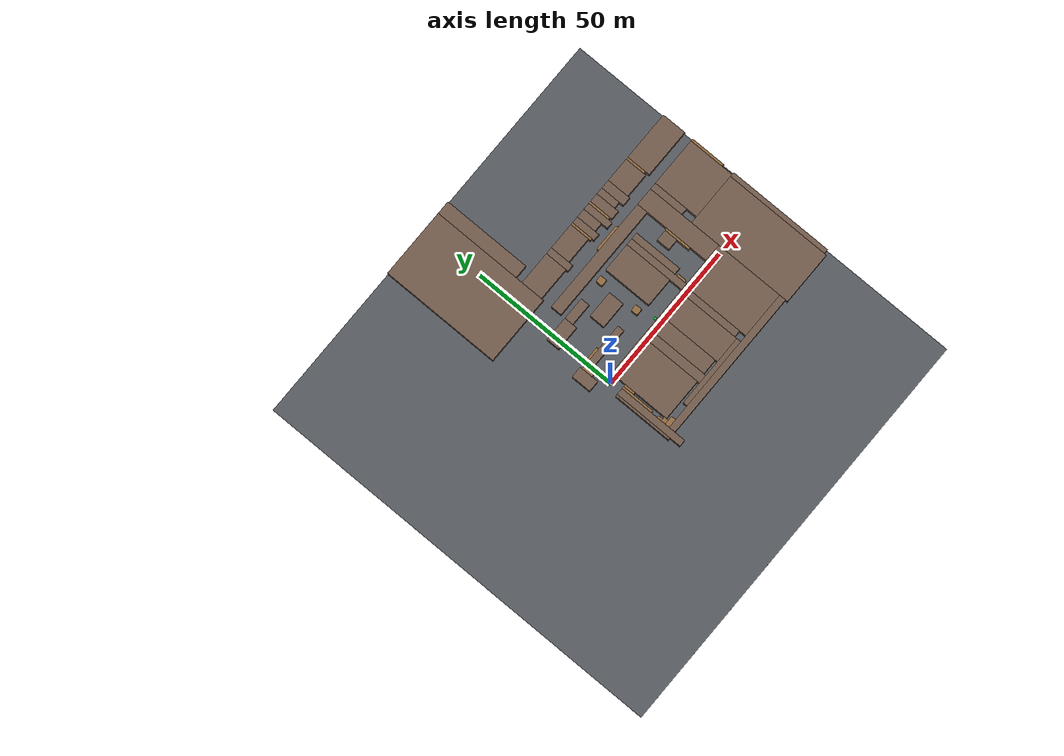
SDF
<sdf version="1.9">
 <world name="mosim_ue_factoryenvironmentcollect">
  <model name="ue_truth_ground">
   <static>true</static>
   <pose>0.75 0.75 -0.025 0 0 0</pose>
   <link name="link">
    <collision name="collision"><geometry><box><size>141 141 0.05</size></box></geometry></collision>
    <visual name="visual">
     <geometry><box><size>141 141 0.05</size></box></geometry>
     <material><ambient>0.34 0.36 0.38 1</ambient><diffuse>0.34 0.36 0.38 1</diffuse></material>
    </visual>
   </link>
  </model>
  <model name="ue_occ_0002">
   <static>true</static>
   <pose>-0.375 -15.75 1.5 0 0 0</pose>
   <link name="link">
    <collision name="collision"><geometry><box><size>2.25 24 3</size></box></geometry></collision>
    <visual name="visual">
     <geometry><box><size>2.25 24 3</size></box></geometry>
     <material><ambient>0.45 0.36 0.3 1</ambient><diffuse>0.45 0.36 0.3 1</diffuse></material>
    </visual>
   </link>
  </model>
  <model name="ue_occ_0007">
   <static>true</static>
   <pose>60.75 -6.375 1.5 0 0 0</pose>
   <link name="link">
    <collision name="collision"><geometry><box><size>18 36.75 3</size></box></geometry></collision>
    <visual name="visual">
     <geometry><box><size>18 36.75 3</size></box></geometry>
     <material><ambient>0.45 0.36 0.3 1</ambient><diffuse>0.45 0.36 0.3 1</diffuse></material>
    </visual>
   </link>
  </model>
  <model name="ue_occ_0008">
   <static>true</static>
   <pose>-1.875 -13.875 1.5 0 0 0</pose>
   <link name="link">
    <collision name="collision"><geometry><box><size>0.75 20.25 3</size></box></geometry></collision>
    <visual name="visual">
     <geometry><box><size>0.75 20.25 3</size></box></geometry>
     <material><ambient>0.45 0.36 0.3 1</ambient><diffuse>0.45 0.36 0.3 1</diffuse></material>
    </visual>
   </link>
  </model>
  <model name="ue_occ_0009">
   <static>true</static>
   <pose>26.25 -22.875 1.5 0 0 0</pose>
   <link name="link">
    <collision name="collision"><geometry><box><size>51 2.25 3</size></box></geometry></collision>
    <visual name="visual">
     <geometry><box><size>51 2.25 3</size></box></geometry>
     <material><ambient>0.45 0.36 0.3 1</ambient><diffuse>0.45 0.36 0.3 1</diffuse></material>
    </visual>
   </link>
  </model>
  <model name="ue_occ_0010">
   <static>true</static>
   <pose>70.5 -6 1.5 0 0 0</pose>
   <link name="link">
    <collision name="collision"><geometry><box><size>1.5 36 3</size></box></geometry></collision>
    <visual name="visual">
     <geometry><box><size>1.5 36 3</size></box></geometry>
     <material><ambient>0.45 0.36 0.3 1</ambient><diffuse>0.45 0.36 0.3 1</diffuse></material>
    </visual>
   </link>
  </model>
  <model name="ue_occ_0011">
   <static>true</static>
   <pose>2.25 -21 1.5 0 0 0</pose>
   <link name="link">
    <collision name="collision"><geometry><box><size>3 1.5 3</size></box></geometry></collision>
    <visual name="visual">
     <geometry><box><size>3 1.5 3</size></box></geometry>
     <material><ambient>0.58 0.42 0.25 1</ambient><diffuse>0.58 0.42 0.25 1</diffuse></material>
    </visual>
   </link>
  </model>
  <model name="ue_occ_0012">
   <static>true</static>
   <pose>21.375 -21 1.5 0 0 0</pose>
   <link name="link">
    <collision name="collision"><geometry><box><size>24.75 1.5 3</size></box></geometry></collision>
    <visual name="visual">
     <geometry><box><size>24.75 1.5 3</size></box></geometry>
     <material><ambient>0.45 0.36 0.3 1</ambient><diffuse>0.45 0.36 0.3 1</diffuse></material>
    </visual>
   </link>
  </model>
  <model name="ue_occ_0013">
   <static>true</static>
   <pose>43.875 -10.125 1.5 0 0 0</pose>
   <link name="link">
    <collision name="collision"><geometry><box><size>15.75 23.25 3</size></box></geometry></collision>
    <visual name="visual">
     <geometry><box><size>15.75 23.25 3</size></box></geometry>
     <material><ambient>0.45 0.36 0.3 1</ambient><diffuse>0.45 0.36 0.3 1</diffuse></material>
    </visual>
   </link>
  </model>
  <model name="ue_occ_0016">
   <static>true</static>
   <pose>1.5 -19.5 1.5 0 0 0</pose>
   <link name="link">
    <collision name="collision"><geometry><box><size>1.5 1.5 3</size></box></geometry></collision>
    <visual name="visual">
     <geometry><box><size>1.5 1.5 3</size></box></geometry>
     <material><ambient>0.58 0.42 0.25 1</ambient><diffuse>0.58 0.42 0.25 1</diffuse></material>
    </visual>
   </link>
  </model>
  <model name="ue_occ_0017">
   <static>true</static>
   <pose>18 -9.375 1.5 0 0 0</pose>
   <link name="link">
    <collision name="collision"><geometry><box><size>3 21.75 3</size></box></geometry></collision>
    <visual name="visual">
     <geometry><box><size>3 21.75 3</size></box></geometry>
     <material><ambient>0.45 0.36 0.3 1</ambient><diffuse>0.45 0.36 0.3 1</diffuse></material>
    </visual>
   </link>
  </model>
  <model name="ue_occ_0018">
   <static>true</static>
   <pose>29.25 -9.375 1.5 0 0 0</pose>
   <link name="link">
    <collision name="collision"><geometry><box><size>9 21.75 3</size></box></geometry></collision>
    <visual name="visual">
     <geometry><box><size>9 21.75 3</size></box></geometry>
     <material><ambient>0.45 0.36 0.3 1</ambient><diffuse>0.45 0.36 0.3 1</diffuse></material>
    </visual>
   </link>
  </model>
  <model name="ue_occ_0019">
   <static>true</static>
   <pose>9.375 -9 1.5 0 0 0</pose>
   <link name="link">
    <collision name="collision"><geometry><box><size>14.25 21 3</size></box></geometry></collision>
    <visual name="visual">
     <geometry><box><size>14.25 21 3</size></box></geometry>
     <material><ambient>0.45 0.36 0.3 1</ambient><diffuse>0.45 0.36 0.3 1</diffuse></material>
    </visual>
   </link>
  </model>
  <model name="ue_occ_0020">
   <static>true</static>
   <pose>22.125 -9 1.5 0 0 0</pose>
   <link name="link">
    <collision name="collision"><geometry><box><size>5.25 21 3</size></box></geometry></collision>
    <visual name="visual">
     <geometry><box><size>5.25 21 3</size></box></geometry>
     <material><ambient>0.45 0.36 0.3 1</ambient><diffuse>0.45 0.36 0.3 1</diffuse></material>
    </visual>
   </link>
  </model>
  <model name="ue_occ_0021">
   <static>true</static>
   <pose>34.875 -9 1.5 0 0 0</pose>
   <link name="link">
    <collision name="collision"><geometry><box><size>2.25 21 3</size></box></geometry></collision>
    <visual name="visual">
     <geometry><box><size>2.25 21 3</size></box></geometry>
     <material><ambient>0.45 0.36 0.3 1</ambient><diffuse>0.45 0.36 0.3 1</diffuse></material>
    </visual>
   </link>
  </model>
  <model name="ue_occ_0022">
   <static>true</static>
   <pose>1.125 -18 1.5 0 0 0</pose>
   <link name="link">
    <collision name="collision"><geometry><box><size>0.75 1.5 3</size></box></geometry></collision>
    <visual name="visual">
     <geometry><box><size>0.75 1.5 3</size></box></geometry>
     <material><ambient>0.58 0.42 0.25 1</ambient><diffuse>0.58 0.42 0.25 1</diffuse></material>
    </visual>
   </link>
  </model>
  <model name="ue_occ_0025">
   <static>true</static>
   <pose>1.125 -9.375 1.5 0 0 0</pose>
   <link name="link">
    <collision name="collision"><geometry><box><size>0.75 11.25 3</size></box></geometry></collision>
    <visual name="visual">
     <geometry><box><size>0.75 11.25 3</size></box></geometry>
     <material><ambient>0.58 0.42 0.25 1</ambient><diffuse>0.58 0.42 0.25 1</diffuse></material>
    </visual>
   </link>
  </model>
  <model name="ue_occ_0031">
   <static>true</static>
   <pose>1.875 -5.625 1.5 0 0 0</pose>
   <link name="link">
    <collision name="collision"><geometry><box><size>0.75 3.75 3</size></box></geometry></collision>
    <visual name="visual">
     <geometry><box><size>0.75 3.75 3</size></box></geometry>
     <material><ambient>0.58 0.42 0.25 1</ambient><diffuse>0.58 0.42 0.25 1</diffuse></material>
    </visual>
   </link>
  </model>
  <model name="ue_occ_0041">
   <static>true</static>
   <pose>35.625 12 1.5 0 0 0</pose>
   <link name="link">
    <collision name="collision"><geometry><box><size>2.25 21 3</size></box></geometry></collision>
    <visual name="visual">
     <geometry><box><size>2.25 21 3</size></box></geometry>
     <material><ambient>0.45 0.36 0.3 1</ambient><diffuse>0.45 0.36 0.3 1</diffuse></material>
    </visual>
   </link>
  </model>
  <model name="ue_occ_0042">
   <static>true</static>
   <pose>48.75 14.625 1.5 0 0 0</pose>
   <link name="link">
    <collision name="collision"><geometry><box><size>6 26.25 3</size></box></geometry></collision>
    <visual name="visual">
     <geometry><box><size>6 26.25 3</size></box></geometry>
     <material><ambient>0.45 0.36 0.3 1</ambient><diffuse>0.45 0.36 0.3 1</diffuse></material>
    </visual>
   </link>
  </model>
  <model name="ue_occ_0045">
   <static>true</static>
   <pose>37.125 3.75 1.5 0 0 0</pose>
   <link name="link">
    <collision name="collision"><geometry><box><size>0.75 3 3</size></box></geometry></collision>
    <visual name="visual">
     <geometry><box><size>0.75 3 3</size></box></geometry>
     <material><ambient>0.58 0.42 0.25 1</ambient><diffuse>0.58 0.42 0.25 1</diffuse></material>
    </visual>
   </link>
  </model>
  <model name="ue_occ_0046">
   <static>true</static>
   <pose>-4.125 6.375 1.5 0 0 0</pose>
   <link name="link">
    <collision name="collision"><geometry><box><size>3.75 6.75 3</size></box></geometry></collision>
    <visual name="visual">
     <geometry><box><size>3.75 6.75 3</size></box></geometry>
     <material><ambient>0.45 0.36 0.3 1</ambient><diffuse>0.45 0.36 0.3 1</diffuse></material>
    </visual>
   </link>
  </model>
  <model name="ue_occ_0047">
   <static>true</static>
   <pose>-1.125 7.125 1.5 0 0 0</pose>
   <link name="link">
    <collision name="collision"><geometry><box><size>2.25 3.75 3</size></box></geometry></collision>
    <visual name="visual">
     <geometry><box><size>2.25 3.75 3</size></box></geometry>
     <material><ambient>0.58 0.42 0.25 1</ambient><diffuse>0.58 0.42 0.25 1</diffuse></material>
    </visual>
   </link>
  </model>
  <model name="ue_occ_0048">
   <static>true</static>
   <pose>29.625 14.25 1.5 0 0 0</pose>
   <link name="link">
    <collision name="collision"><geometry><box><size>9.75 16.5 3</size></box></geometry></collision>
    <visual name="visual">
     <geometry><box><size>9.75 16.5 3</size></box></geometry>
     <material><ambient>0.45 0.36 0.3 1</ambient><diffuse>0.45 0.36 0.3 1</diffuse></material>
    </visual>
   </link>
  </model>
  <model name="ue_occ_0049">
   <static>true</static>
   <pose>37.875 14.25 1.5 0 0 0</pose>
   <link name="link">
    <collision name="collision"><geometry><box><size>2.25 16.5 3</size></box></geometry></collision>
    <visual name="visual">
     <geometry><box><size>2.25 16.5 3</size></box></geometry>
     <material><ambient>0.45 0.36 0.3 1</ambient><diffuse>0.45 0.36 0.3 1</diffuse></material>
    </visual>
   </link>
  </model>
  <model name="ue_occ_0051">
   <static>true</static>
   <pose>7.125 7.875 1.5 0 0 0</pose>
   <link name="link">
    <collision name="collision"><geometry><box><size>14.25 2.25 3</size></box></geometry></collision>
    <visual name="visual">
     <geometry><box><size>14.25 2.25 3</size></box></geometry>
     <material><ambient>0.45 0.36 0.3 1</ambient><diffuse>0.45 0.36 0.3 1</diffuse></material>
    </visual>
   </link>
  </model>
  <model name="ue_occ_0052">
   <static>true</static>
   <pose>21.375 7.875 1.5 0 0 0</pose>
   <link name="link">
    <collision name="collision"><geometry><box><size>2.25 2.25 3</size></box></geometry></collision>
    <visual name="visual">
     <geometry><box><size>2.25 2.25 3</size></box></geometry>
     <material><ambient>0.58 0.42 0.25 1</ambient><diffuse>0.58 0.42 0.25 1</diffuse></material>
    </visual>
   </link>
  </model>
  <model name="ue_occ_0053">
   <static>true</static>
   <pose>45.375 12 1.5 0 0 0</pose>
   <link name="link">
    <collision name="collision"><geometry><box><size>0.75 9 3</size></box></geometry></collision>
    <visual name="visual">
     <geometry><box><size>0.75 9 3</size></box></geometry>
     <material><ambient>0.58 0.42 0.25 1</ambient><diffuse>0.58 0.42 0.25 1</diffuse></material>
    </visual>
   </link>
  </model>
  <model name="ue_occ_0061">
   <static>true</static>
   <pose>2.25 9.375 1.5 0 0 0</pose>
   <link name="link">
    <collision name="collision"><geometry><box><size>6 0.75 3</size></box></geometry></collision>
    <visual name="visual">
     <geometry><box><size>6 0.75 3</size></box></geometry>
     <material><ambient>0.58 0.42 0.25 1</ambient><diffuse>0.58 0.42 0.25 1</diffuse></material>
    </visual>
   </link>
  </model>
  <model name="ue_occ_0064">
   <static>true</static>
   <pose>15.75 14.625 1.5 0 0 0</pose>
   <link name="link">
    <collision name="collision"><geometry><box><size>9 5.25 3</size></box></geometry></collision>
    <visual name="visual">
     <geometry><box><size>9 5.25 3</size></box></geometry>
     <material><ambient>0.45 0.36 0.3 1</ambient><diffuse>0.45 0.36 0.3 1</diffuse></material>
    </visual>
   </link>
  </model>
  <model name="ue_occ_0065">
   <static>true</static>
   <pose>43.125 14.25 1.5 0 0 0</pose>
   <link name="link">
    <collision name="collision"><geometry><box><size>3.75 4.5 3</size></box></geometry></collision>
    <visual name="visual">
     <geometry><box><size>3.75 4.5 3</size></box></geometry>
     <material><ambient>0.45 0.36 0.3 1</ambient><diffuse>0.45 0.36 0.3 1</diffuse></material>
    </visual>
   </link>
  </model>
  <model name="ue_occ_0066">
   <static>true</static>
   <pose>62.25 19.875 1.5 0 0 0</pose>
   <link name="link">
    <collision name="collision"><geometry><box><size>16.5 15.75 3</size></box></geometry></collision>
    <visual name="visual">
     <geometry><box><size>16.5 15.75 3</size></box></geometry>
     <material><ambient>0.45 0.36 0.3 1</ambient><diffuse>0.45 0.36 0.3 1</diffuse></material>
    </visual>
   </link>
  </model>
  <model name="ue_occ_0068">
   <static>true</static>
   <pose>52.875 21.75 1.5 0 0 0</pose>
   <link name="link">
    <collision name="collision"><geometry><box><size>2.25 12 3</size></box></geometry></collision>
    <visual name="visual">
     <geometry><box><size>2.25 12 3</size></box></geometry>
     <material><ambient>0.45 0.36 0.3 1</ambient><diffuse>0.45 0.36 0.3 1</diffuse></material>
    </visual>
   </link>
  </model>
  <model name="ue_occ_0069">
   <static>true</static>
   <pose>70.875 21.75 1.5 0 0 0</pose>
   <link name="link">
    <collision name="collision"><geometry><box><size>0.75 12 3</size></box></geometry></collision>
    <visual name="visual">
     <geometry><box><size>0.75 12 3</size></box></geometry>
     <material><ambient>0.58 0.42 0.25 1</ambient><diffuse>0.58 0.42 0.25 1</diffuse></material>
    </visual>
   </link>
  </model>
  <model name="ue_occ_0071">
   <static>true</static>
   <pose>1.875 20.25 1.5 0 0 0</pose>
   <link name="link">
    <collision name="collision"><geometry><box><size>8.25 4.5 3</size></box></geometry></collision>
    <visual name="visual">
     <geometry><box><size>8.25 4.5 3</size></box></geometry>
     <material><ambient>0.45 0.36 0.3 1</ambient><diffuse>0.45 0.36 0.3 1</diffuse></material>
    </visual>
   </link>
  </model>
  <model name="ue_occ_0075">
   <static>true</static>
   <pose>9.75 21 1.5 0 0 0</pose>
   <link name="link">
    <collision name="collision"><geometry><box><size>7.5 3 3</size></box></geometry></collision>
    <visual name="visual">
     <geometry><box><size>7.5 3 3</size></box></geometry>
     <material><ambient>0.45 0.36 0.3 1</ambient><diffuse>0.45 0.36 0.3 1</diffuse></material>
    </visual>
   </link>
  </model>
  <model name="ue_occ_0078">
   <static>true</static>
   <pose>21.375 21.375 1.5 0 0 0</pose>
   <link name="link">
    <collision name="collision"><geometry><box><size>2.25 2.25 3</size></box></geometry></collision>
    <visual name="visual">
     <geometry><box><size>2.25 2.25 3</size></box></geometry>
     <material><ambient>0.58 0.42 0.25 1</ambient><diffuse>0.58 0.42 0.25 1</diffuse></material>
    </visual>
   </link>
  </model>
  <model name="ue_occ_0083">
   <static>true</static>
   <pose>25.875 25.875 1.5 0 0 0</pose>
   <link name="link">
    <collision name="collision"><geometry><box><size>39.75 3.75 3</size></box></geometry></collision>
    <visual name="visual">
     <geometry><box><size>39.75 3.75 3</size></box></geometry>
     <material><ambient>0.45 0.36 0.3 1</ambient><diffuse>0.45 0.36 0.3 1</diffuse></material>
    </visual>
   </link>
  </model>
  <model name="ue_occ_0086">
   <static>true</static>
   <pose>32.25 28.125 1.5 0 0 0</pose>
   <link name="link">
    <collision name="collision"><geometry><box><size>9 0.75 3</size></box></geometry></collision>
    <visual name="visual">
     <geometry><box><size>9 0.75 3</size></box></geometry>
     <material><ambient>0.58 0.42 0.25 1</ambient><diffuse>0.58 0.42 0.25 1</diffuse></material>
    </visual>
   </link>
  </model>
  <model name="ue_occ_0088">
   <static>true</static>
   <pose>35.625 34.5 1.5 0 0 0</pose>
   <link name="link">
    <collision name="collision"><geometry><box><size>2.25 9 3</size></box></geometry></collision>
    <visual name="visual">
     <geometry><box><size>2.25 9 3</size></box></geometry>
     <material><ambient>0.45 0.36 0.3 1</ambient><diffuse>0.45 0.36 0.3 1</diffuse></material>
    </visual>
   </link>
  </model>
  <model name="ue_occ_0089">
   <static>true</static>
   <pose>-5.625 51 1.5 0 0 0</pose>
   <link name="link">
    <collision name="collision"><geometry><box><size>23.25 40.5 3</size></box></geometry></collision>
    <visual name="visual">
     <geometry><box><size>23.25 40.5 3</size></box></geometry>
     <material><ambient>0.45 0.36 0.3 1</ambient><diffuse>0.45 0.36 0.3 1</diffuse></material>
    </visual>
   </link>
  </model>
  <model name="ue_occ_0090">
   <static>true</static>
   <pose>18.375 34.875 1.5 0 0 0</pose>
   <link name="link">
    <collision name="collision"><geometry><box><size>2.25 8.25 3</size></box></geometry></collision>
    <visual name="visual">
     <geometry><box><size>2.25 8.25 3</size></box></geometry>
     <material><ambient>0.45 0.36 0.3 1</ambient><diffuse>0.45 0.36 0.3 1</diffuse></material>
    </visual>
   </link>
  </model>
  <model name="ue_occ_0091">
   <static>true</static>
   <pose>30.375 34.875 1.5 0 0 0</pose>
   <link name="link">
    <collision name="collision"><geometry><box><size>2.25 8.25 3</size></box></geometry></collision>
    <visual name="visual">
     <geometry><box><size>2.25 8.25 3</size></box></geometry>
     <material><ambient>0.45 0.36 0.3 1</ambient><diffuse>0.45 0.36 0.3 1</diffuse></material>
    </visual>
   </link>
  </model>
  <model name="ue_occ_0092">
   <static>true</static>
   <pose>39 34.875 1.5 0 0 0</pose>
   <link name="link">
    <collision name="collision"><geometry><box><size>3 8.25 3</size></box></geometry></collision>
    <visual name="visual">
     <geometry><box><size>3 8.25 3</size></box></geometry>
     <material><ambient>0.45 0.36 0.3 1</ambient><diffuse>0.45 0.36 0.3 1</diffuse></material>
    </visual>
   </link>
  </model>
  <model name="ue_occ_0093">
   <static>true</static>
   <pose>44.25 34.875 1.5 0 0 0</pose>
   <link name="link">
    <collision name="collision"><geometry><box><size>3 8.25 3</size></box></geometry></collision>
    <visual name="visual">
     <geometry><box><size>3 8.25 3</size></box></geometry>
     <material><ambient>0.45 0.36 0.3 1</ambient><diffuse>0.45 0.36 0.3 1</diffuse></material>
    </visual>
   </link>
  </model>
  <model name="ue_occ_0094">
   <static>true</static>
   <pose>63 34.875 1.5 0 0 0</pose>
   <link name="link">
    <collision name="collision"><geometry><box><size>16.5 8.25 3</size></box></geometry></collision>
    <visual name="visual">
     <geometry><box><size>16.5 8.25 3</size></box></geometry>
     <material><ambient>0.45 0.36 0.3 1</ambient><diffuse>0.45 0.36 0.3 1</diffuse></material>
    </visual>
   </link>
  </model>
  <model name="ue_occ_0095">
   <static>true</static>
   <pose>11.625 35.25 1.5 0 0 0</pose>
   <link name="link">
    <collision name="collision"><geometry><box><size>11.25 7.5 3</size></box></geometry></collision>
    <visual name="visual">
     <geometry><box><size>11.25 7.5 3</size></box></geometry>
     <material><ambient>0.45 0.36 0.3 1</ambient><diffuse>0.45 0.36 0.3 1</diffuse></material>
    </visual>
   </link>
  </model>
  <model name="ue_occ_0096">
   <static>true</static>
   <pose>28.875 35.25 1.5 0 0 0</pose>
   <link name="link">
    <collision name="collision"><geometry><box><size>0.75 7.5 3</size></box></geometry></collision>
    <visual name="visual">
     <geometry><box><size>0.75 7.5 3</size></box></geometry>
     <material><ambient>0.58 0.42 0.25 1</ambient><diffuse>0.58 0.42 0.25 1</diffuse></material>
    </visual>
   </link>
  </model>
  <model name="ue_occ_0097">
   <static>true</static>
   <pose>37.125 35.25 1.5 0 0 0</pose>
   <link name="link">
    <collision name="collision"><geometry><box><size>0.75 7.5 3</size></box></geometry></collision>
    <visual name="visual">
     <geometry><box><size>0.75 7.5 3</size></box></geometry>
     <material><ambient>0.58 0.42 0.25 1</ambient><diffuse>0.58 0.42 0.25 1</diffuse></material>
    </visual>
   </link>
  </model>
  <model name="ue_occ_0098">
   <static>true</static>
   <pose>49.875 35.25 1.5 0 0 0</pose>
   <link name="link">
    <collision name="collision"><geometry><box><size>8.25 7.5 3</size></box></geometry></collision>
    <visual name="visual">
     <geometry><box><size>8.25 7.5 3</size></box></geometry>
     <material><ambient>0.45 0.36 0.3 1</ambient><diffuse>0.45 0.36 0.3 1</diffuse></material>
    </visual>
   </link>
  </model>
  <model name="ue_occ_0101">
   <static>true</static>
   <pose>24 35.625 1.5 0 0 0</pose>
   <link name="link">
    <collision name="collision"><geometry><box><size>9 6.75 3</size></box></geometry></collision>
    <visual name="visual">
     <geometry><box><size>9 6.75 3</size></box></geometry>
     <material><ambient>0.45 0.36 0.3 1</ambient><diffuse>0.45 0.36 0.3 1</diffuse></material>
    </visual>
   </link>
  </model>
  <model name="ue_occ_0102">
   <static>true</static>
   <pose>33 35.625 1.5 0 0 0</pose>
   <link name="link">
    <collision name="collision"><geometry><box><size>3 6.75 3</size></box></geometry></collision>
    <visual name="visual">
     <geometry><box><size>3 6.75 3</size></box></geometry>
     <material><ambient>0.45 0.36 0.3 1</ambient><diffuse>0.45 0.36 0.3 1</diffuse></material>
    </visual>
   </link>
  </model>
  <model name="ue_occ_0103">
   <static>true</static>
   <pose>41.625 35.625 1.5 0 0 0</pose>
   <link name="link">
    <collision name="collision"><geometry><box><size>2.25 6.75 3</size></box></geometry></collision>
    <visual name="visual">
     <geometry><box><size>2.25 6.75 3</size></box></geometry>
     <material><ambient>0.45 0.36 0.3 1</ambient><diffuse>0.45 0.36 0.3 1</diffuse></material>
    </visual>
   </link>
  </model>
  <model name="ue_occ_0104">
   <static>true</static>
   <pose>54.375 35.625 1.5 0 0 0</pose>
   <link name="link">
    <collision name="collision"><geometry><box><size>0.75 6.75 3</size></box></geometry></collision>
    <visual name="visual">
     <geometry><box><size>0.75 6.75 3</size></box></geometry>
     <material><ambient>0.58 0.42 0.25 1</ambient><diffuse>0.58 0.42 0.25 1</diffuse></material>
    </visual>
   </link>
  </model>
  <model name="ue_occ_0108">
   <static>true</static>
   <pose>8.25 56.25 1.5 0 0 0</pose>
   <link name="link">
    <collision name="collision"><geometry><box><size>4.5 30 3</size></box></geometry></collision>
    <visual name="visual">
     <geometry><box><size>4.5 30 3</size></box></geometry>
     <material><ambient>0.45 0.36 0.3 1</ambient><diffuse>0.45 0.36 0.3 1</diffuse></material>
    </visual>
   </link>
  </model>
  <model name="ue_truth_start_marker">
   <static>true</static>
   <pose>0 0 0.04 0 0 0</pose>
   <link name="link">
    <collision name="collision"><geometry><box><size>0.8 0.8 0.08</size></box></geometry></collision>
    <visual name="visual">
     <geometry><box><size>0.8 0.8 0.08</size></box></geometry>
     <material><ambient>0.05 0.45 0.95 1</ambient><diffuse>0.05 0.45 0.95 1</diffuse></material>
    </visual>
   </link>
  </model>
  <model name="ue_truth_goal_marker">
   <static>true</static>
   <pose>23.25 2.25 0.04 0 0 0</pose>
   <link name="link">
    <collision name="collision"><geometry><box><size>0.8 0.8 0.08</size></box></geometry></collision>
    <visual name="visual">
     <geometry><box><size>0.8 0.8 0.08</size></box></geometry>
     <material><ambient>0.05 0.75 0.25 1</ambient><diffuse>0.05 0.75 0.25 1</diffuse></material>
    </visual>
   </link>
  </model>
  <include><uri>model://sunray150</uri><pose>0 0 1.9 0 0 0</pose></include>
 </world>
</sdf>
